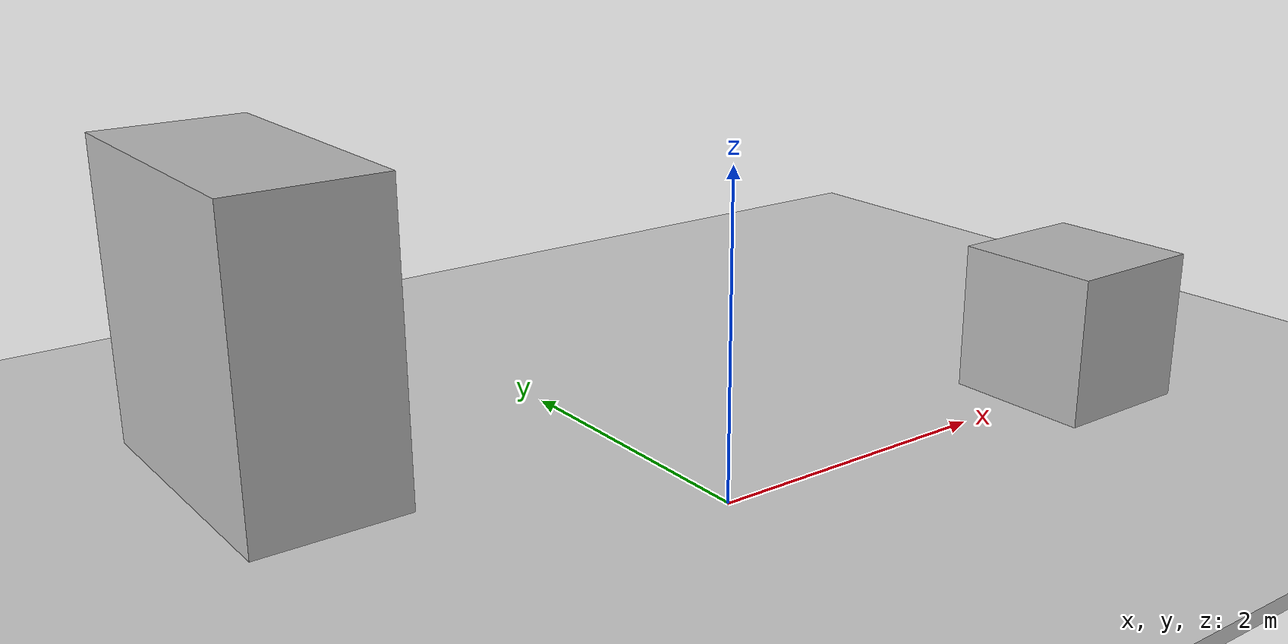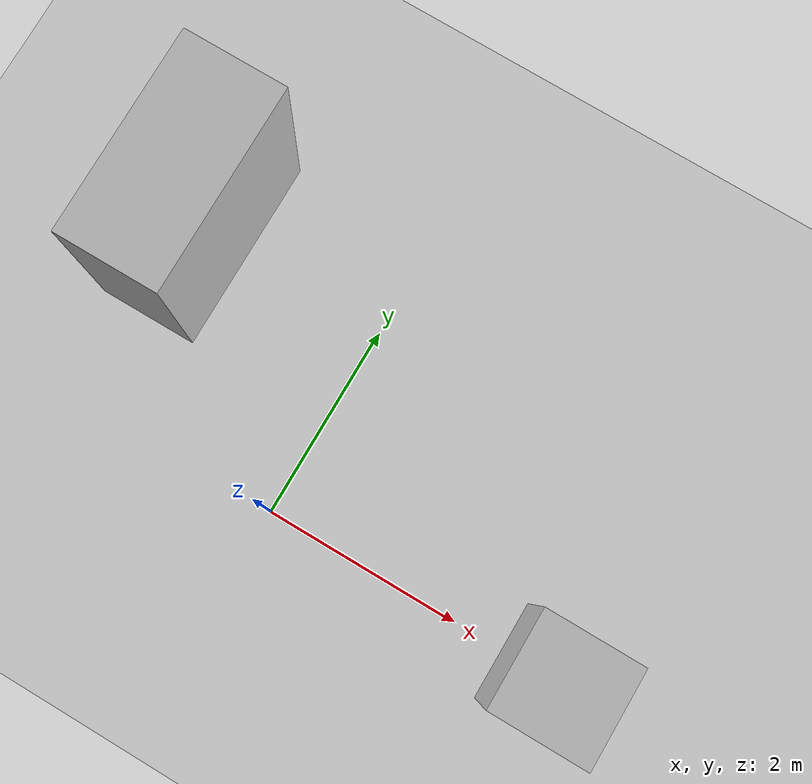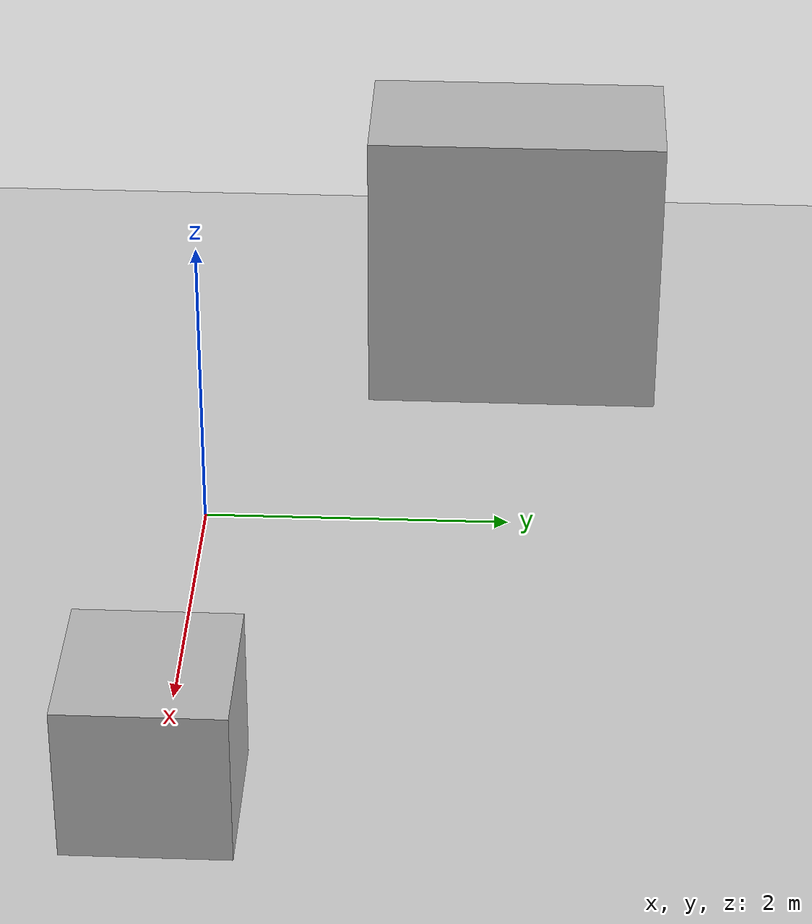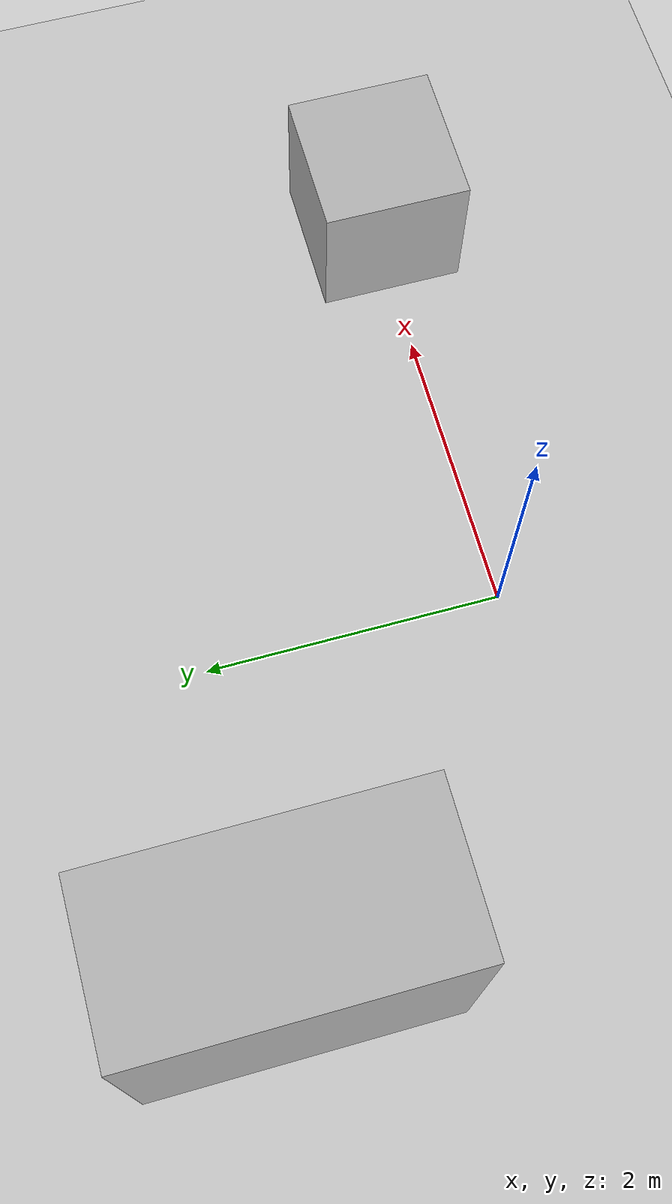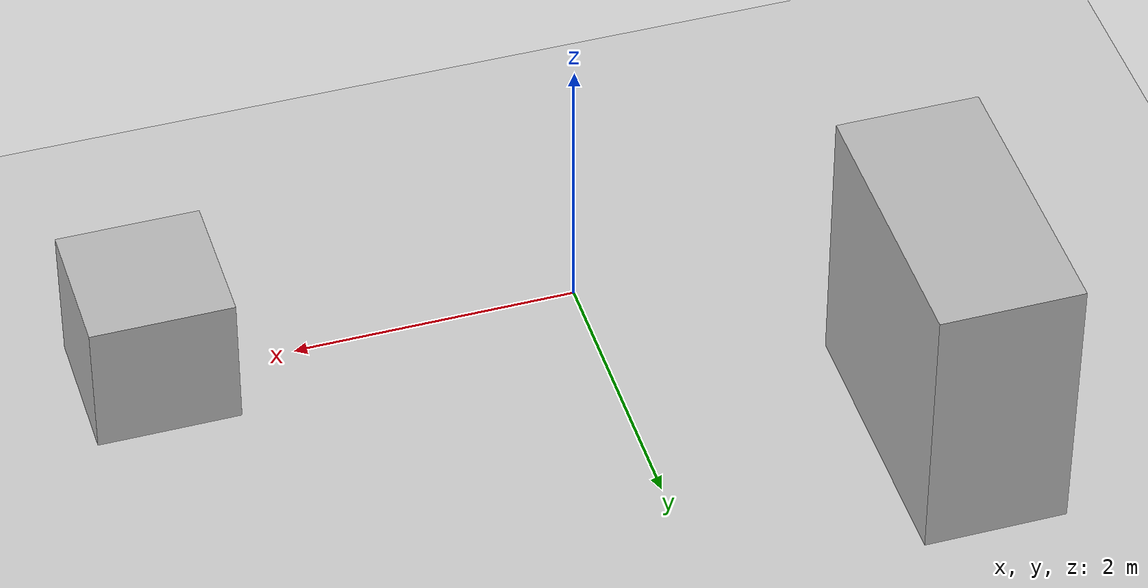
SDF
<?xml version="1.7" ?>
<sdf version="1.9">
  <world name="default">
    <plugin name="gz::sim::systems::Physics" filename="gz-sim-physics-system"/>
    <plugin name="gz::sim::systems::SceneBroadcaster" filename="gz-sim-scene-broadcaster-system"/>
    <gui fullscreen="0">
      <plugin filename="gz-gui-plugin-entity-tree" name="Entity tree"/>
      <plugin filename="gz-gui-plugin-gz-plot" name="Plot"/>
      <plugin filename="gz-gui-plugin-camera-tracking" name="Camera tracking"/>
    </gui>

    <!-- Simple room -->
    <model name="room">
      <static>true</static>
      <link name="floor">
        <collision name="col">
          <geometry><box><size>20 20 0.1</size></box></geometry>
        </collision>
        <visual name="vis">
          <geometry><box><size>20 20 0.1</size></box></geometry>
          <material><ambient>0.8 0.8 0.8 1</ambient></material>
        </visual>
        <pose>0 0 -0.05 0 0 0</pose>
      </link>
      <!-- features to map -->
      <link name="box1"><pose>3 0 0.5 0 0 0</pose>
        <collision name="c"><geometry><box><size>1 1 1</size></box></geometry></collision>
        <visual name="v"><geometry><box><size>1 1 1</size></box></geometry></visual>
      </link>
      <link name="box2"><pose>-2 2 1.0 0 0 0</pose>
        <collision name="c"><geometry><box><size>1 2 2</size></box></geometry></collision>
        <visual name="v"><geometry><box><size>1 2 2</size></box></geometry></visual>
      </link>
    </model>

    <!-- UAV with IMU and RGB-D -->
    <model name="uav">
      <pose>0 0 0.6 0 0 0</pose>
      <link name="base_link">
        <inertial><mass>1.0</mass><inertia><ixx>0.03</ixx><iyy>0.03</iyy><izz>0.05</izz></inertia></inertial>
        <!-- IMU sensor -->
        <sensor name="imu" type="imu">
          <always_on>true</always_on>
          <update_rate>200</update_rate>
          <topic>/world/default/model/uav/link/base_link/imu</topic>
          <imu><angular_velocity/><linear_acceleration/></imu>
        </sensor>
      </link>

      <link name="camera_link">
        <pose>0.10 0 0.05 0 0 0</pose>
        <sensor name="rgbd" type="rgbd_camera">
          <always_on>true</always_on>
          <update_rate>15</update_rate>
          <topic>/camera</topic>
          <camera>
            <image><width>640</width><height>480</height><format>R8G8B8</format></image>
            <clip><near>0.15</near><far>12.0</far></clip>
            <hfov>1.047</hfov>
          </camera>
          <depth_camera>
            <clip><near>0.15</near><far>12.0</far></clip>
          </depth_camera>
          <point_cloud>
            <topic>/camera/points</topic>
            <frame_id>camera_link</frame_id>
            <format>packed</format>
          </point_cloud>
        </sensor>
      </link>

      <joint name="base_to_cam" type="fixed">
        <parent>base_link</parent><child>camera_link</child>
      </joint>

      <!-- Simple velocity control system -->
      <plugin name="gz::sim::systems::VelocityControl" filename="gz-sim-velocity-control-system">
        <command_topic>/model/uav/cmd_vel</command_topic>
        <linear_velocity_limits>1 1 1</linear_velocity_limits>
        <angular_velocity_limits>1 1 1</angular_velocity_limits>
      </plugin>
    </model>

    <gravity>0 0 -9.81</gravity>
  </world>
</sdf>
